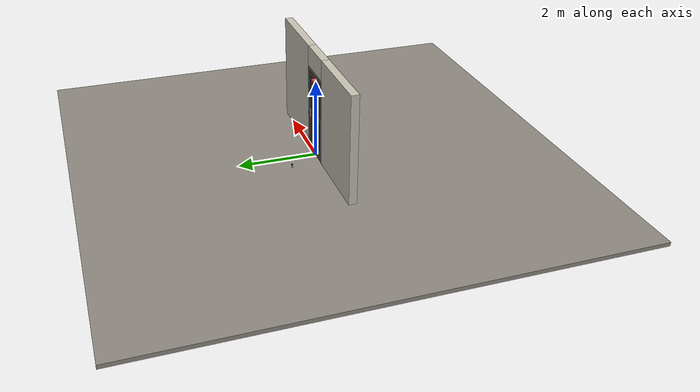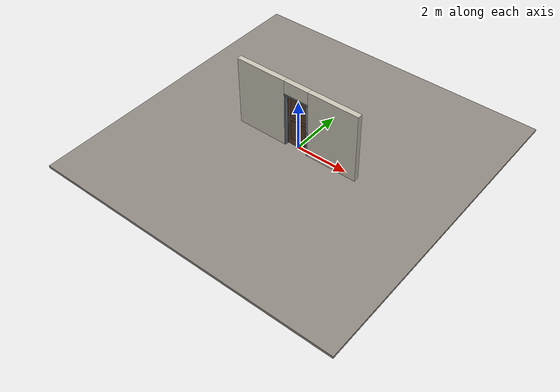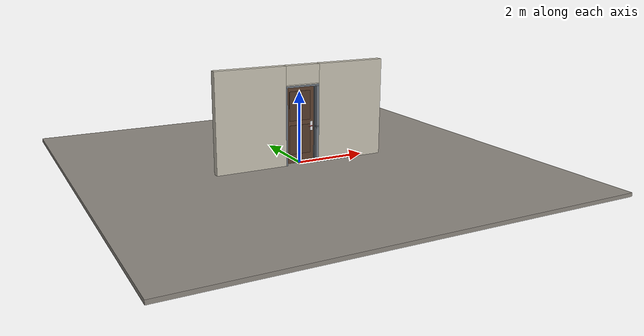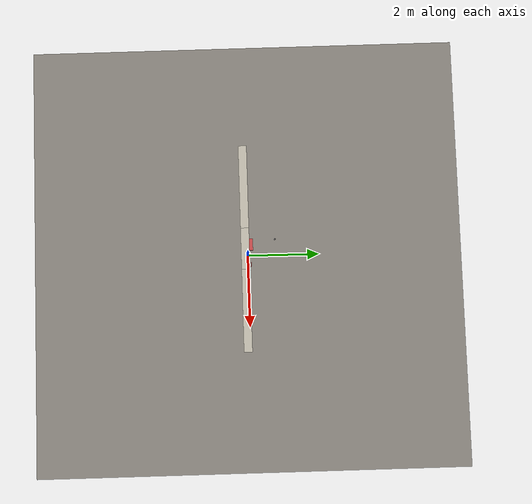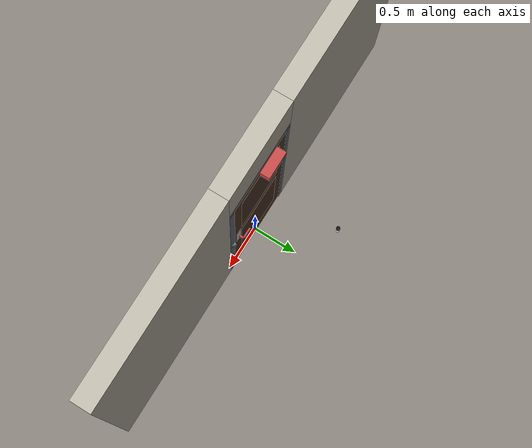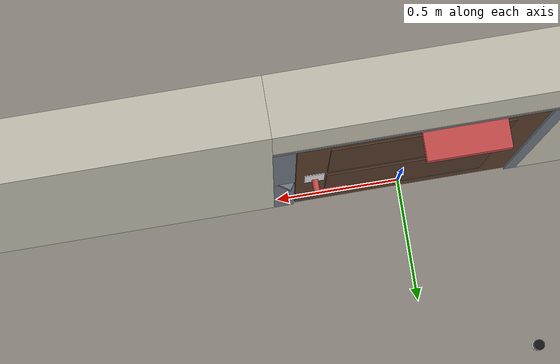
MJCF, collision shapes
<?xml version="1.0" ?>
<mujoco model="db0762_swing_single_simple">
  <compiler angle="radian" meshdir="../../hardware" texturedir="../../textures" autolimits="true" inertiafromgeom="false"/>
  <option timestep="0.002" integrator="implicitfast" cone="elliptic" impratio="10" noslip_iterations="3">
    <flag multiccd="enable"/>
  </option>
  <size memory="16M"/>
  <default>
    <geom condim="4" solref="0.005 1" solimp="0.95 0.99 0.001"/>
    <joint solreflimit="0.005 1" solimplimit="0.95 0.99 0.001"/>
    <tendon solreflimit="0.005 1"/>
    <equality solref="0.002 1"/>
  </default>
  <visual>
    <headlight ambient="0.4 0.4 0.4" diffuse="0.7 0.7 0.7" specular="0.2 0.2 0.2"/>
    <quality shadowsize="4096"/>
    <map znear="0.01" zfar="60"/>
  </visual>
  <asset>
    <mesh name="card_reader_38c0bdb077" file="card_reader_38c0bdb077.obj"/>
    <mesh name="closer_body_fdc4667657" file="closer_body_fdc4667657.obj"/>
    <mesh name="hinge_e22b26c0c1" file="hinge_e22b26c0c1.obj"/>
    <mesh name="hinge_jamb_e1d088f8dc" file="hinge_jamb_e1d088f8dc.obj"/>
    <mesh name="lever_56c65af20a" file="lever_56c65af20a.obj"/>
    <material name="mat_floor" rgba="0.55 0.53 0.5 1" specular="0.2" shininess="0.15" reflectance="0"/>
    <material name="mat_wall" rgba="0.78 0.76 0.7 1" specular="0.2" shininess="0.1" reflectance="0"/>
    <material name="mat_leaf" rgba="0.36 0.25 0.18 1" specular="0.2" shininess="0.55" reflectance="0"/>
    <material name="mat_leaf_panel" rgba="0.331 0.23 0.166 1" specular="0.2" shininess="0.55" reflectance="0"/>
    <material name="mat_hinge" rgba="0.65 0.66 0.68 1" specular="0.74" shininess="0.5" reflectance="0.36"/>
    <material name="mat_op_chrome" rgba="0.9 0.9 0.92 1" specular="0.8" shininess="0.9" reflectance="0.4"/>
    <material name="mat_trim" rgba="0.85 0.66 0.3 1" specular="0.8" shininess="0.75" reflectance="0.4"/>
    <material name="mat_reader" rgba="0.05 0.05 0.05 1" specular="0.38" shininess="0.3" reflectance="0.12"/>
    <material name="mat_bolt" rgba="0.75 0.76 0.77 1" specular="0.8" shininess="0.65" reflectance="0.4"/>
    <material name="mat_frame" rgba="0.45 0.48 0.52 1" specular="0.32" shininess="0.6" reflectance="0.08"/>
    <material name="mat_closer" rgba="0.22 0.17 0.13 1" specular="0.8" shininess="0.6" reflectance="0.4"/>
    <material name="mat_peephole" rgba="0.85 0.66 0.3 1" specular="0.8" shininess="0.75" reflectance="0.4"/>
    <material name="mat_bumper_stop" rgba="0.08 0.08 0.08 1" specular="0.2" shininess="0.1" reflectance="0"/>
    <material name="mat_stop_base" rgba="0.9 0.9 0.92 1" specular="0.8" shininess="0.9" reflectance="0.4"/>
    <texture name="skybox" type="skybox" builtin="gradient" rgb1="0.6 0.7 0.85" rgb2="0.9 0.92 0.95" width="256" height="256"/>
  </asset>
  <worldbody>
    <light name="sun" pos="1.5 -2.5 4" dir="-0.3 0.5 -0.8" directional="true" diffuse="0.8 0.8 0.8" specular="0.3 0.3 0.3" castshadow="true"/>
    <light name="fill" pos="-1.5 2.5 3" dir="0.3 -0.5 -0.7" directional="true" diffuse="0.35 0.35 0.4" castshadow="false"/>
    <camera name="robot_view" pos="0 -2.708813 1.812087" xyaxes="1 0 0 0 0.26963 0.962964" fovy="52"/>
    <camera name="far_view" pos="0 2.566812 1.812087" xyaxes="-1 0 0 0 -0.26963 0.962964" fovy="52"/>
    <camera name="iso" pos="2.004737 -2.286763 2.234138" xyaxes="0.741536 0.670913 0 -0.242917 0.268487 0.932151" fovy="46"/>
    <camera name="detail_handle" pos="0.445 -0.877 1.296" xyaxes="0.97561 0.219512 0 -0.070934 0.315262 0.94635" fovy="38"/>
    <geom name="floor" type="box" size="6 6 0.05" pos="0 0 -0.05" material="mat_floor" group="0" contype="1" conaffinity="1" friction="0.8 0.005 0.0001" density="2400"/>
    <geom name="wall_left" type="box" size="1.007 0.1 1.3735" pos="-1.493 -0.071 1.3735" material="mat_wall" group="0" contype="1" conaffinity="1" friction="0.6 0.005 0.0001" density="800"/>
    <geom name="wall_right" type="box" size="0.992 0.1 1.3735" pos="1.508 -0.071 1.3735" material="mat_wall" group="0" contype="1" conaffinity="1" friction="0.6 0.005 0.0001" density="800"/>
    <geom name="wall_header" type="box" size="0.501 0.1 0.26" pos="0.015 -0.071 2.487" material="mat_wall" group="0" contype="1" conaffinity="1" friction="0.6 0.005 0.0001" density="800"/>
    <geom name="hinge_0_jamb" type="mesh" mesh="hinge_jamb_e1d088f8dc" pos="-0.433 0.029 0.259" quat="0 1 0 0" material="mat_hinge" group="1" contype="0" conaffinity="0" density="7850"/>
    <geom name="hinge_1_jamb" type="mesh" mesh="hinge_jamb_e1d088f8dc" pos="-0.433 0.029 1.076" quat="0 1 0 0" material="mat_hinge" group="1" contype="0" conaffinity="0" density="7850"/>
    <geom name="hinge_2_jamb" type="mesh" mesh="hinge_jamb_e1d088f8dc" pos="-0.433 0.029 1.963" quat="0 1 0 0" material="mat_hinge" group="1" contype="0" conaffinity="0" density="7850"/>
    <geom name="jamb_hinge" type="box" size="0.025 0.1 1.0735" pos="-0.461 -0.071 1.0735" material="mat_frame" group="0" contype="1" conaffinity="1" friction="0.6 0.005 0.0001" density="300"/>
    <geom name="strike_1016_wall_n" type="box" size="0.04 0.08075 0.018" pos="0.476 -0.09025 1.016" material="mat_frame" group="0" contype="1" conaffinity="1" friction="0.6 0.005 0.0001" density="300"/>
    <geom name="strike_1016_wall_p" type="box" size="0.04 0.008 0.018" pos="0.476 0.0175 1.016" material="mat_frame" group="0" contype="1" conaffinity="1" friction="0.6 0.005 0.0001" density="300"/>
    <geom name="strike_1016_ramp" type="box" size="0.04 0.018028 0.018" pos="0.479282 0.018312 1.016" quat="0.957092 0 0 -0.289784" material="mat_frame" group="0" contype="1" conaffinity="1" friction="0.12 0.005 0.0001" density="300"/>
    <geom name="strike_1016_back" type="box" size="0.0285 0.0095 0.018" pos="0.4875 0 1.016" material="mat_frame" group="0" contype="1" conaffinity="1" friction="0.6 0.005 0.0001" density="300"/>
    <geom name="jamb_strike_0" type="box" size="0.04 0.1 0.499" pos="0.476 -0.071 0.499" material="mat_frame" group="0" contype="1" conaffinity="1" friction="0.6 0.005 0.0001" density="300"/>
    <geom name="jamb_strike_1" type="box" size="0.04 0.1 0.5565" pos="0.476 -0.071 1.5905" material="mat_frame" group="0" contype="1" conaffinity="1" friction="0.6 0.005 0.0001" density="300"/>
    <geom name="jamb_head" type="box" size="0.501 0.1 0.025" pos="0.015 -0.071 2.172" material="mat_frame" group="0" contype="1" conaffinity="1" friction="0.6 0.005 0.0001" density="300"/>
    <geom name="head_stud" type="box" size="0.501 0.1 0.015" pos="0.015 -0.071 2.212" material="mat_wall" group="0" contype="1" conaffinity="1" friction="0.6 0.005 0.0001" density="500"/>
    <geom name="stop_hinge" type="box" size="0.0055 0.016 1.0735" pos="-0.4305 -0.0385 1.0735" material="mat_frame" group="0" contype="1" conaffinity="1" friction="0.6 0.005 0.0001" density="300"/>
    <geom name="stop_strike" type="box" size="0.0055 0.016 1.0735" pos="0.4305 -0.0385 1.0735" material="mat_frame" group="0" contype="1" conaffinity="1" friction="0.6 0.005 0.0001" density="300"/>
    <geom name="stop_head" type="box" size="0.436 0.016 0.0055" pos="0 -0.0385 2.1415" material="mat_frame" group="0" contype="1" conaffinity="1" friction="0.6 0.005 0.0001" density="300"/>
    <geom name="door_stop_base" type="cylinder" size="0.022 0.003" pos="-0.449 0.7634 0.003" material="mat_stop_base" group="0" contype="1" conaffinity="1" friction="0.6 0.005 0.0001" density="7850"/>
    <geom name="door_stop_post" type="cylinder" size="0.012 0.0245" pos="-0.449 0.7634 0.0305" material="mat_stop_base" group="0" contype="1" conaffinity="1" friction="0.6 0.005 0.0001" density="7850"/>
    <geom name="door_stop_bumper" type="cylinder" size="0.022 0.02" pos="-0.449 0.7634 0.075" material="mat_bumper_stop" group="0" contype="1" conaffinity="1" friction="0.6 0.005 0.0001" density="1100"/>
    <site name="approach_point" pos="0 -1.5 0" quat="1 0 0 0" size="0.05" rgba="0.2 0.9 0.2 0.5" group="4"/>
    <site name="goal_point" pos="0 1.5 0" quat="1 0 0 0" size="0.05" rgba="0.2 0.9 0.2 0.5" group="4"/>
    <site name="door_plane_center" pos="0 0 1.0735" quat="1 0 0 0" size="0.02" rgba="0.2 0.9 0.2 0.5" group="4"/>
    <body name="leaf" pos="-0.436 0 0">
      <inertial pos="0.406589 0.016566 1.294336" mass="56.500761" quat="-0.474237 0.496484 0.516046 0.512152" diaginertia="3.126514894 25.840945021 28.869782555"/>
      <joint name="leaf_hinge" type="hinge" axis="0 0 1" pos="0.003 0.029 0" limited="true" range="0 1.570796" damping="12.214767" frictionloss="0.165227" stiffness="10.994423" springref="-2.062864" armature="0.02"/>
      <geom name="leaf_slab" type="box" size="0.432 0.022 1.067" pos="0.435 0 1.076" material="mat_leaf" group="0" contype="1" conaffinity="1" friction="0.35 0.005 0.0001" density="1"/>
      <geom name="leaf_panel_0_n" type="box" size="0.31696 0.003 0.40564" pos="0.435 -0.025 0.66938" material="mat_leaf_panel" group="1" contype="0" conaffinity="0" density="1"/>
      <geom name="leaf_panel_0_p" type="box" size="0.31696 0.003 0.40564" pos="0.435 0.025 0.66938" material="mat_leaf_panel" group="1" contype="0" conaffinity="0" density="1"/>
      <geom name="leaf_panel_1_n" type="box" size="0.31696 0.003 0.40564" pos="0.435 -0.025 1.61066" material="mat_leaf_panel" group="1" contype="0" conaffinity="0" density="1"/>
      <geom name="leaf_panel_1_p" type="box" size="0.31696 0.003 0.40564" pos="0.435 0.025 1.61066" material="mat_leaf_panel" group="1" contype="0" conaffinity="0" density="1"/>
      <geom name="hinge_0" type="mesh" mesh="hinge_e22b26c0c1" pos="0.003 0.029 0.259" quat="0 1 0 0" material="mat_hinge" group="1" contype="0" conaffinity="0" density="7850"/>
      <geom name="hinge_1" type="mesh" mesh="hinge_e22b26c0c1" pos="0.003 0.029 1.076" quat="0 1 0 0" material="mat_hinge" group="1" contype="0" conaffinity="0" density="7850"/>
      <geom name="hinge_2" type="mesh" mesh="hinge_e22b26c0c1" pos="0.003 0.029 1.963" quat="0 1 0 0" material="mat_hinge" group="1" contype="0" conaffinity="0" density="7850"/>
      <geom name="leaf_handle_escutcheon_n" type="box" size="0.0375 0.0015 0.13" pos="0.797 -0.0235 1.016" material="mat_op_chrome" group="1" contype="0" conaffinity="0" density="3000"/>
      <geom name="leaf_handle_escutcheon_p" type="box" size="0.0375 0.0015 0.13" pos="0.797 0.0235 1.016" material="mat_op_chrome" group="1" contype="0" conaffinity="0" density="3000"/>
      <geom name="leaf_handle_reader" type="mesh" mesh="card_reader_38c0bdb077" pos="0.797 0.022 1.176" quat="0 0 0.707107 0.707107" material="mat_reader" group="1" contype="0" conaffinity="0" density="2000"/>
      <geom name="leaf_latch_bolt_faceplate" type="box" size="0.0006 0.014 0.028" pos="0.8664 0 1.016" material="mat_bolt" group="1" contype="0" conaffinity="0" density="8500"/>
      <geom name="closer_body" type="mesh" mesh="closer_body_fdc4667657" pos="0.3 0.022 2.054" quat="-0.707107 0.707107 0 0" material="mat_closer" group="1" contype="0" conaffinity="0" density="2000"/>
      <geom name="closer_body_col" type="box" size="0.145 0.05 0.035" pos="0.3 0.072 2.054" material="mat_closer" group="3" contype="1" conaffinity="1" rgba="0.8 0.3 0.3 0.25" friction="0.6 0.005 0.0001" density="2000"/>
      <site name="leaf_edge_mid" pos="0.867 0 1.067" quat="1 0 0 0" size="0.02" rgba="0.2 0.9 0.2 0.5" group="4"/>
      <body name="leaf_handle" pos="0.797 0 1.016">
        <inertial pos="-0.038009 0 0" mass="0.678697" quat="0 0.707107 0.707107 0" diaginertia="0.001178914 0.003248695 0.004390737"/>
        <joint name="leaf_handle_hinge" type="hinge" axis="0 -1 0" limited="true" range="0 0.87" damping="0.231314" frictionloss="0.06" stiffness="1.1" springref="-0.454545" armature="0.01"/>
        <geom name="leaf_handle_lever_n" type="mesh" mesh="lever_56c65af20a" pos="0 -0.022 0" quat="0.707107 0.707107 0 0" material="mat_op_chrome" group="1" contype="0" conaffinity="0" density="3000"/>
        <geom name="leaf_handle_lever_col_n" type="capsule" size="0.0095 0.0505" pos="-0.06 -0.077 0" quat="0.707107 0 -0.707107 0" material="mat_op_chrome" group="3" contype="1" conaffinity="1" rgba="0.8 0.3 0.3 0.25" friction="0.7 0.01 0.0001" density="3000"/>
        <geom name="leaf_handle_hub_col_n" type="cylinder" size="0.012 0.022" pos="0 -0.052 0" quat="0.707107 -0.707107 0 0" material="mat_op_chrome" group="3" contype="1" conaffinity="1" rgba="0.8 0.3 0.3 0.25" friction="0.6 0.005 0.0001" density="3000"/>
        <geom name="leaf_handle_lever_p" type="mesh" mesh="lever_56c65af20a" pos="0 0.022 0" quat="-0.707107 0.707107 0 0" material="mat_op_chrome" group="1" contype="0" conaffinity="0" density="3000"/>
        <geom name="leaf_handle_lever_col_p" type="capsule" size="0.0095 0.0505" pos="-0.06 0.077 0" quat="0.707107 0 -0.707107 0" material="mat_op_chrome" group="3" contype="1" conaffinity="1" rgba="0.8 0.3 0.3 0.25" friction="0.7 0.01 0.0001" density="3000"/>
        <geom name="leaf_handle_hub_col_p" type="cylinder" size="0.012 0.022" pos="0 0.052 0" quat="0.707107 -0.707107 0 0" material="mat_op_chrome" group="3" contype="1" conaffinity="1" rgba="0.8 0.3 0.3 0.25" friction="0.6 0.005 0.0001" density="3000"/>
        <site name="leaf_handle_grip_n" pos="-0.096 -0.077 0" quat="1 0 0 0" size="0.012" rgba="0.2 0.9 0.2 0.5" group="4"/>
        <site name="leaf_handle_grip_p" pos="-0.096 0.077 0" quat="1 0 0 0" size="0.012" rgba="0.2 0.9 0.2 0.5" group="4"/>
      </body>
      <body name="leaf_latch_bolt" pos="0.867 0 1.016">
        <inertial pos="-0.0055 0 0" mass="0.074627" quat="0.92388 -0.382683 0 0" diaginertia="0.000002271 0.000013255 0.000013255"/>
        <joint name="leaf_latch_bolt_slide" type="slide" axis="-1 0 0" limited="true" range="0 0.019" damping="2" frictionloss="0.3" stiffness="550" springref="-0.01" armature="0.1"/>
        <geom name="leaf_latch_bolt_capsule" type="capsule" size="0.008 0.0165" pos="-0.0055 0 0" quat="0.707107 0 0.707107 0" material="mat_bolt" group="0" contype="1" conaffinity="1" friction="0.2 0.005 0.0001" density="8500"/>
      </body>
    </body>
  </worldbody>
  <tendon>
    <fixed name="leaf_latch_bolt_coupling" limited="true" range="0 10">
      <joint joint="leaf_latch_bolt_slide" coef="1"/>
      <joint joint="leaf_handle_hinge" coef="-0.023457"/>
    </fixed>
  </tendon>
  <sensor>
    <jointpos name="leaf_hinge_pos" joint="leaf_hinge"/>
    <jointvel name="leaf_hinge_vel" joint="leaf_hinge"/>
    <jointpos name="leaf_handle_hinge_pos" joint="leaf_handle_hinge"/>
    <jointvel name="leaf_handle_hinge_vel" joint="leaf_handle_hinge"/>
    <jointpos name="leaf_latch_bolt_slide_pos" joint="leaf_latch_bolt_slide"/>
    <jointvel name="leaf_latch_bolt_slide_vel" joint="leaf_latch_bolt_slide"/>
  </sensor>
</mujoco>
